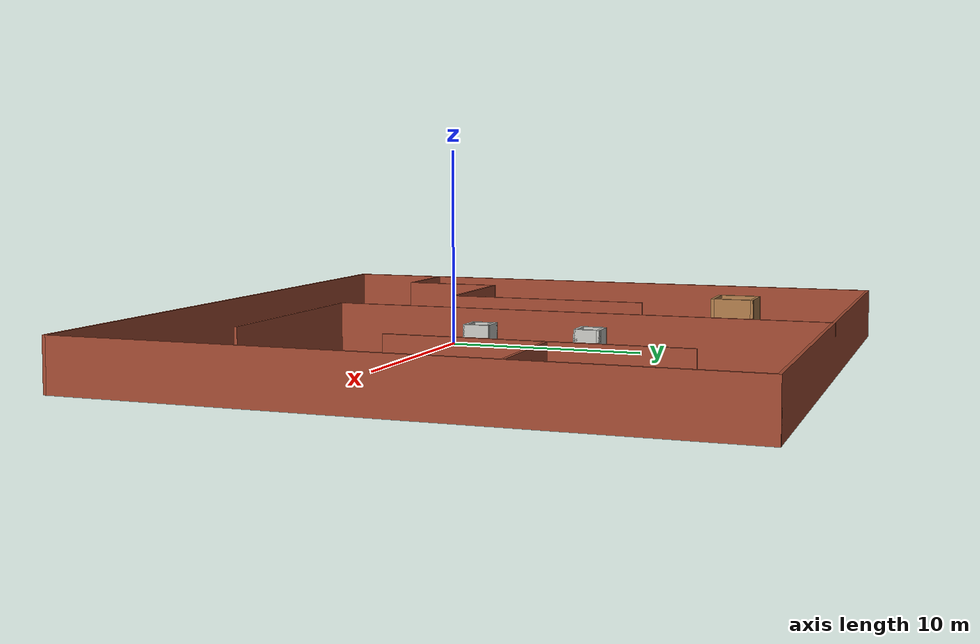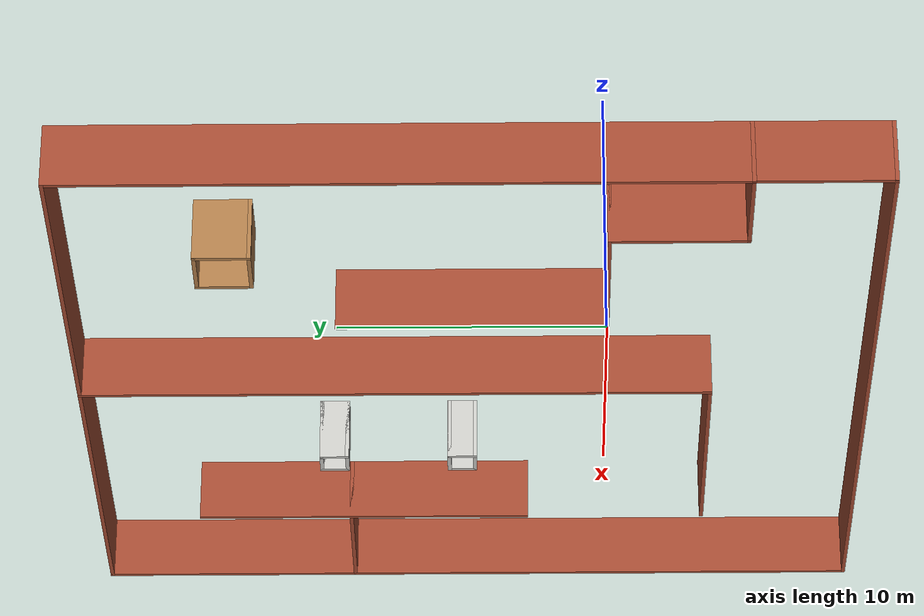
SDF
<?xml version='1.0'?>
<sdf version='1.7'>
  <model name='building'>
    <pose>5 5 0 0 -0 0</pose>
    <link name='Wall_23'>
      <collision name='Wall_23_Collision'>
        <geometry>
          <box>
            <size>30.15 0.15 2.5</size>
          </box>
        </geometry>
        <pose>0 0 1.25 0 -0 0</pose>
      </collision>
      <visual name='Wall_23_Visual'>
        <pose>0 0 1.25 0 -0 0</pose>
        <geometry>
          <box>
            <size>30.15 0.15 2.5</size>
          </box>
        </geometry>
        <material>
          <script>
            <uri>file://media/materials/scripts/gazebo.material</uri>
            <name>Gazebo/Bricks</name>
          </script>
          <ambient>1 1 1 1</ambient>
        </material>
        <meta>
          <layer>0</layer>
        </meta>
      </visual>
      <pose>-15 0 0 0 -0 1.5708</pose>
    </link>
    <link name='Wall_25'>
      <collision name='Wall_25_Collision'>
        <geometry>
          <box>
            <size>30.15 0.15 2.5</size>
          </box>
        </geometry>
        <pose>0 0 1.25 0 -0 0</pose>
      </collision>
      <visual name='Wall_25_Visual'>
        <pose>0 0 1.25 0 -0 0</pose>
        <geometry>
          <box>
            <size>30.15 0.15 2.5</size>
          </box>
        </geometry>
        <material>
          <script>
            <uri>file://media/materials/scripts/gazebo.material</uri>
            <name>Gazebo/Bricks</name>
          </script>
          <ambient>1 1 1 1</ambient>
        </material>
        <meta>
          <layer>0</layer>
        </meta>
      </visual>
      <pose>-0 -15 0 0 -0 0</pose>
    </link>
    <link name='Wall_27'>
      <collision name='Wall_27_Collision'>
        <geometry>
          <box>
            <size>30.15 0.15 2.5</size>
          </box>
        </geometry>
        <pose>0 0 1.25 0 -0 0</pose>
      </collision>
      <visual name='Wall_27_Visual'>
        <pose>0 0 1.25 0 -0 0</pose>
        <geometry>
          <box>
            <size>30.15 0.15 2.5</size>
          </box>
        </geometry>
        <material>
          <script>
            <uri>file://media/materials/scripts/gazebo.material</uri>
            <name>Gazebo/Bricks</name>
          </script>
          <ambient>1 1 1 1</ambient>
        </material>
        <meta>
          <layer>0</layer>
        </meta>
      </visual>
      <pose>-0 15 0 0 -0 0</pose>
    </link>
    <link name='Wall_28'>
      <collision name='Wall_28_Collision'>
        <geometry>
          <box>
            <size>30.15 0.15 2.5</size>
          </box>
        </geometry>
        <pose>0 0 1.25 0 -0 0</pose>
      </collision>
      <visual name='Wall_28_Visual'>
        <pose>0 0 1.25 0 -0 0</pose>
        <geometry>
          <box>
            <size>30.15 0.15 2.5</size>
          </box>
        </geometry>
        <material>
          <script>
            <uri>file://media/materials/scripts/gazebo.material</uri>
            <name>Gazebo/Bricks</name>
          </script>
          <ambient>1 1 1 1</ambient>
        </material>
        <meta>
          <layer>0</layer>
        </meta>
      </visual>
      <pose>15 0 0 0 -0 -1.5708</pose>
    </link>
    <link name='Wall_30'>
      <collision name='Wall_30_Collision'>
        <geometry>
          <box>
            <size>6.15 0.15 2.5</size>
          </box>
        </geometry>
        <pose>0 0 1.25 0 -0 0</pose>
      </collision>
      <visual name='Wall_30_Visual'>
        <pose>0 0 1.25 0 -0 0</pose>
        <geometry>
          <box>
            <size>6.15 0.15 2.5</size>
          </box>
        </geometry>
        <material>
          <script>
            <uri>file://media/materials/scripts/gazebo.material</uri>
            <name>Gazebo/Bricks</name>
          </script>
          <ambient>1 1 1 1</ambient>
        </material>
        <meta>
          <layer>0</layer>
        </meta>
      </visual>
      <pose>-8 -5 0 0 -0 0</pose>
    </link>
    <link name='Wall_31'>
      <collision name='Wall_31_Collision'>
        <geometry>
          <box>
            <size>10.15 0.15 2.5</size>
          </box>
        </geometry>
        <pose>0 0 1.25 0 -0 0</pose>
      </collision>
      <visual name='Wall_31_Visual'>
        <pose>0 0 1.25 0 -0 0</pose>
        <geometry>
          <box>
            <size>10.15 0.15 2.5</size>
          </box>
        </geometry>
        <material>
          <script>
            <uri>file://media/materials/scripts/gazebo.material</uri>
            <name>Gazebo/Bricks</name>
          </script>
          <ambient>1 1 1 1</ambient>
        </material>
        <meta>
          <layer>0</layer>
        </meta>
      </visual>
      <pose>-5 0 0 0 -0 1.5708</pose>
    </link>
    <link name='Wall_33'>
      <collision name='Wall_33_Collision'>
        <geometry>
          <box>
            <size>10.15 0.15 2.5</size>
          </box>
        </geometry>
        <pose>0 0 1.25 0 -0 0</pose>
      </collision>
      <visual name='Wall_33_Visual'>
        <pose>0 0 1.25 0 -0 0</pose>
        <geometry>
          <box>
            <size>10.15 0.15 2.5</size>
          </box>
        </geometry>
        <material>
          <script>
            <uri>file://media/materials/scripts/gazebo.material</uri>
            <name>Gazebo/Bricks</name>
          </script>
          <ambient>1 1 1 1</ambient>
        </material>
        <meta>
          <layer>0</layer>
        </meta>
      </visual>
      <pose>5 -9 0 0 -0 0</pose>
    </link>
    <link name='Wall_35'>
      <collision name='Wall_35_Collision'>
        <geometry>
          <box>
            <size>13.15 0.15 2.5</size>
          </box>
        </geometry>
        <pose>0 0 1.25 0 -0 0</pose>
      </collision>
      <visual name='Wall_35_Visual'>
        <pose>0 0 1.25 0 -0 0</pose>
        <geometry>
          <box>
            <size>13.15 0.15 2.5</size>
          </box>
        </geometry>
        <material>
          <script>
            <uri>file://media/materials/scripts/gazebo.material</uri>
            <name>Gazebo/Bricks</name>
          </script>
          <ambient>1 1 1 1</ambient>
        </material>
        <meta>
          <layer>0</layer>
        </meta>
      </visual>
      <pose>10 4.5 0 0 -0 -1.5708</pose>
    </link>
    <link name='Wall_37'>
      <collision name='Wall_37_Collision'>
        <geometry>
          <box>
            <size>1.15 0.15 2.5</size>
          </box>
        </geometry>
        <pose>0 0 1.25 0 -0 0</pose>
      </collision>
      <visual name='Wall_37_Visual'>
        <pose>0 0 1.25 0 -0 0</pose>
        <geometry>
          <box>
            <size>1.15 0.15 2.5</size>
          </box>
        </geometry>
        <material>
          <script>
            <uri>file://media/materials/scripts/gazebo.material</uri>
            <name>Gazebo/CeilingTiled</name>
          </script>
          <ambient>1 1 1 1</ambient>
        </material>
        <meta>
          <layer>0</layer>
        </meta>
      </visual>
      <pose>5.5 6 0 0 -0 0</pose>
    </link>
    <link name='Wall_38'>
      <collision name='Wall_38_Collision'>
        <geometry>
          <box>
            <size>1.15 0.15 2.5</size>
          </box>
        </geometry>
        <pose>0 0 1.25 0 -0 0</pose>
      </collision>
      <visual name='Wall_38_Visual'>
        <pose>0 0 1.25 0 -0 0</pose>
        <geometry>
          <box>
            <size>1.15 0.15 2.5</size>
          </box>
        </geometry>
        <material>
          <script>
            <uri>file://media/materials/scripts/gazebo.material</uri>
            <name>Gazebo/CeilingTiled</name>
          </script>
          <ambient>1 1 1 1</ambient>
        </material>
        <meta>
          <layer>0</layer>
        </meta>
      </visual>
      <pose>6 5.5 0 0 -0 -1.5708</pose>
    </link>
    <link name='Wall_39'>
      <collision name='Wall_39_Collision'>
        <geometry>
          <box>
            <size>1.15 0.15 2.5</size>
          </box>
        </geometry>
        <pose>0 0 1.25 0 -0 0</pose>
      </collision>
      <visual name='Wall_39_Visual'>
        <pose>0 0 1.25 0 -0 0</pose>
        <geometry>
          <box>
            <size>1.15 0.15 2.5</size>
          </box>
        </geometry>
        <material>
          <script>
            <uri>file://media/materials/scripts/gazebo.material</uri>
            <name>Gazebo/CeilingTiled</name>
          </script>
          <ambient>1 1 1 1</ambient>
        </material>
        <meta>
          <layer>0</layer>
        </meta>
      </visual>
      <pose>5.5 5 0 0 -0 3.14159</pose>
    </link>
    <link name='Wall_40'>
      <collision name='Wall_40_Collision'>
        <geometry>
          <box>
            <size>1.15 0.15 2.5</size>
          </box>
        </geometry>
        <pose>0 0 1.25 0 -0 0</pose>
      </collision>
      <visual name='Wall_40_Visual'>
        <pose>0 0 1.25 0 -0 0</pose>
        <geometry>
          <box>
            <size>1.15 0.15 2.5</size>
          </box>
        </geometry>
        <material>
          <script>
            <uri>file://media/materials/scripts/gazebo.material</uri>
            <name>Gazebo/CeilingTiled</name>
          </script>
          <ambient>1 1 1 1</ambient>
        </material>
        <meta>
          <layer>0</layer>
        </meta>
      </visual>
      <pose>5 5.5 0 0 -0 1.5708</pose>
    </link>
    <link name='Wall_43'>
      <collision name='Wall_43_Collision'>
        <geometry>
          <box>
            <size>4.15 0.15 2.5</size>
          </box>
        </geometry>
        <pose>0 0 1.25 0 -0 0</pose>
      </collision>
      <visual name='Wall_43_Visual'>
        <pose>0 0 1.25 0 -0 0</pose>
        <geometry>
          <box>
            <size>4.15 0.15 2.5</size>
          </box>
        </geometry>
        <material>
          <script>
            <uri>file://media/materials/scripts/gazebo.material</uri>
            <name>Gazebo/Bricks</name>
          </script>
          <ambient>1 1 1 1</ambient>
        </material>
        <meta>
          <layer>0</layer>
        </meta>
      </visual>
      <pose>-13 -10 0 0 -0 0</pose>
    </link>
    <link name='Wall_44'>
      <collision name='Wall_44_Collision'>
        <geometry>
          <box>
            <size>5.15 0.15 2.5</size>
          </box>
        </geometry>
        <pose>0 0 1.25 0 -0 0</pose>
      </collision>
      <visual name='Wall_44_Visual'>
        <pose>0 0 1.25 0 -0 0</pose>
        <geometry>
          <box>
            <size>5.15 0.15 2.5</size>
          </box>
        </geometry>
        <material>
          <script>
            <uri>file://media/materials/scripts/gazebo.material</uri>
            <name>Gazebo/Bricks</name>
          </script>
          <ambient>1 1 1 1</ambient>
        </material>
        <meta>
          <layer>0</layer>
        </meta>
      </visual>
      <pose>-11 -7.5 0 0 -0 1.5708</pose>
    </link>
    <link name='Wall_46'>
      <collision name='Wall_46_Collision'>
        <geometry>
          <box>
            <size>1.15 0.15 2.5</size>
          </box>
        </geometry>
        <pose>0 0 1.25 0 -0 0</pose>
      </collision>
      <visual name='Wall_46_Visual'>
        <pose>0 0 1.25 0 -0 0</pose>
        <geometry>
          <box>
            <size>1.15 0.15 2.5</size>
          </box>
        </geometry>
        <material>
          <script>
            <uri>file://media/materials/scripts/gazebo.material</uri>
            <name>Gazebo/CeilingTiled</name>
          </script>
          <ambient>1 1 1 1</ambient>
        </material>
        <meta>
          <layer>0</layer>
        </meta>
      </visual>
      <pose>5.5 1 0 0 -0 0</pose>
    </link>
    <link name='Wall_47'>
      <collision name='Wall_47_Collision'>
        <geometry>
          <box>
            <size>1.15 0.15 2.5</size>
          </box>
        </geometry>
        <pose>0 0 1.25 0 -0 0</pose>
      </collision>
      <visual name='Wall_47_Visual'>
        <pose>0 0 1.25 0 -0 0</pose>
        <geometry>
          <box>
            <size>1.15 0.15 2.5</size>
          </box>
        </geometry>
        <material>
          <script>
            <uri>file://media/materials/scripts/gazebo.material</uri>
            <name>Gazebo/CeilingTiled</name>
          </script>
          <ambient>1 1 1 1</ambient>
        </material>
        <meta>
          <layer>0</layer>
        </meta>
      </visual>
      <pose>6 0.5 0 0 -0 -1.5708</pose>
    </link>
    <link name='Wall_48'>
      <collision name='Wall_48_Collision'>
        <geometry>
          <box>
            <size>1.15 0.15 2.5</size>
          </box>
        </geometry>
        <pose>0 0 1.25 0 -0 0</pose>
      </collision>
      <visual name='Wall_48_Visual'>
        <pose>0 0 1.25 0 -0 0</pose>
        <geometry>
          <box>
            <size>1.15 0.15 2.5</size>
          </box>
        </geometry>
        <material>
          <script>
            <uri>file://media/materials/scripts/gazebo.material</uri>
            <name>Gazebo/CeilingTiled</name>
          </script>
          <ambient>1 1 1 1</ambient>
        </material>
        <meta>
          <layer>0</layer>
        </meta>
      </visual>
      <pose>5.5 0 0 0 -0 3.14159</pose>
    </link>
    <link name='Wall_49'>
      <collision name='Wall_49_Collision'>
        <geometry>
          <box>
            <size>1.15 0.15 2.5</size>
          </box>
        </geometry>
        <pose>0 0 1.25 0 -0 0</pose>
      </collision>
      <visual name='Wall_49_Visual'>
        <pose>0 0 1.25 0 -0 0</pose>
        <geometry>
          <box>
            <size>1.15 0.15 2.5</size>
          </box>
        </geometry>
        <material>
          <script>
            <uri>file://media/materials/scripts/gazebo.material</uri>
            <name>Gazebo/CeilingTiled</name>
          </script>
          <ambient>1 1 1 1</ambient>
        </material>
        <meta>
          <layer>0</layer>
        </meta>
      </visual>
      <pose>5 0.5 0 0 -0 1.5708</pose>
    </link>
    <link name='Wall_51'>
      <collision name='Wall_51_Collision'>
        <geometry>
          <box>
            <size>5.15 0.15 2.5</size>
          </box>
        </geometry>
        <pose>0 0 1.25 0 -0 0</pose>
      </collision>
      <visual name='Wall_51_Visual'>
        <pose>0 0 1.25 0 -0 0</pose>
        <geometry>
          <box>
            <size>5.15 0.15 2.5</size>
          </box>
        </geometry>
        <material>
          <script>
            <uri>file://media/materials/scripts/gazebo.material</uri>
            <name>Gazebo/Bricks</name>
          </script>
          <ambient>1 1 1 1</ambient>
        </material>
        <meta>
          <layer>0</layer>
        </meta>
      </visual>
      <pose>12.5 5 0 0 -0 0</pose>
    </link>
    <link name='Wall_53'>
      <collision name='Wall_53_Collision'>
        <geometry>
          <box>
            <size>24.15 0.15 2.5</size>
          </box>
        </geometry>
        <pose>0 0 1.25 0 -0 0</pose>
      </collision>
      <visual name='Wall_53_Visual'>
        <pose>0 0 1.25 0 -0 0</pose>
        <geometry>
          <box>
            <size>24.15 0.15 2.5</size>
          </box>
        </geometry>
        <material>
          <script>
            <uri>file://media/materials/scripts/gazebo.material</uri>
            <name>Gazebo/Bricks</name>
          </script>
          <ambient>1 1 1 1</ambient>
        </material>
        <meta>
          <layer>0</layer>
        </meta>
      </visual>
      <pose>-0 3 0 0 -0 -1.5708</pose>
    </link>
    <link name='Wall_55'>
      <collision name='Wall_55_Collision'>
        <geometry>
          <box>
            <size>2.15 0.15 2.5</size>
          </box>
        </geometry>
        <pose>0 0 1.25 0 -0 0</pose>
      </collision>
      <visual name='Wall_55_Visual'>
        <pose>0 0 1.25 0 -0 0</pose>
        <geometry>
          <box>
            <size>2.15 0.15 2.5</size>
          </box>
        </geometry>
        <material>
          <script>
            <uri>file://media/materials/scripts/gazebo.material</uri>
            <name>Gazebo/Wood</name>
          </script>
          <ambient>1 1 1 1</ambient>
        </material>
        <meta>
          <layer>0</layer>
        </meta>
      </visual>
      <pose>-9 10 0 0 -0 0</pose>
    </link>
    <link name='Wall_56'>
      <collision name='Wall_56_Collision'>
        <geometry>
          <box>
            <size>2.15 0.15 2.5</size>
          </box>
        </geometry>
        <pose>0 0 1.25 0 -0 0</pose>
      </collision>
      <visual name='Wall_56_Visual'>
        <pose>0 0 1.25 0 -0 0</pose>
        <geometry>
          <box>
            <size>2.15 0.15 2.5</size>
          </box>
        </geometry>
        <material>
          <script>
            <uri>file://media/materials/scripts/gazebo.material</uri>
            <name>Gazebo/Wood</name>
          </script>
          <ambient>1 1 1 1</ambient>
        </material>
        <meta>
          <layer>0</layer>
        </meta>
      </visual>
      <pose>-8 9 0 0 -0 -1.5708</pose>
    </link>
    <link name='Wall_57'>
      <collision name='Wall_57_Collision'>
        <geometry>
          <box>
            <size>2.15 0.15 2.5</size>
          </box>
        </geometry>
        <pose>0 0 1.25 0 -0 0</pose>
      </collision>
      <visual name='Wall_57_Visual'>
        <pose>0 0 1.25 0 -0 0</pose>
        <geometry>
          <box>
            <size>2.15 0.15 2.5</size>
          </box>
        </geometry>
        <material>
          <script>
            <uri>file://media/materials/scripts/gazebo.material</uri>
            <name>Gazebo/Wood</name>
          </script>
          <ambient>1 1 1 1</ambient>
        </material>
        <meta>
          <layer>0</layer>
        </meta>
      </visual>
      <pose>-9 8 0 0 -0 3.14159</pose>
    </link>
    <link name='Wall_58'>
      <collision name='Wall_58_Collision'>
        <geometry>
          <box>
            <size>2.15 0.15 2.5</size>
          </box>
        </geometry>
        <pose>0 0 1.25 0 -0 0</pose>
      </collision>
      <visual name='Wall_58_Visual'>
        <pose>0 0 1.25 0 -0 0</pose>
        <geometry>
          <box>
            <size>2.15 0.15 2.5</size>
          </box>
        </geometry>
        <material>
          <script>
            <uri>file://media/materials/scripts/gazebo.material</uri>
            <name>Gazebo/Wood</name>
          </script>
          <ambient>1 1 1 1</ambient>
        </material>
        <meta>
          <layer>0</layer>
        </meta>
      </visual>
      <pose>-10 9 0 0 -0 1.5708</pose>
    </link>
    <static>1</static>
  </model>
</sdf>
